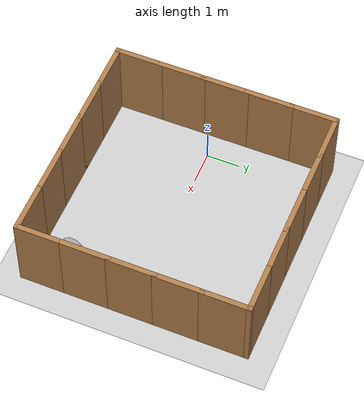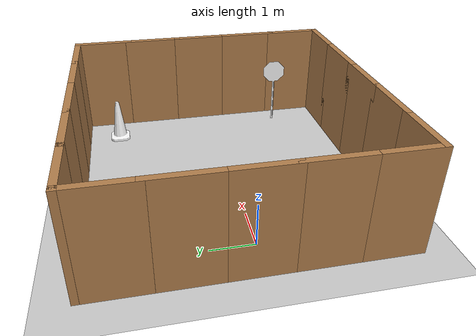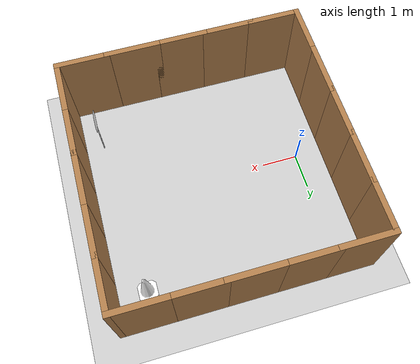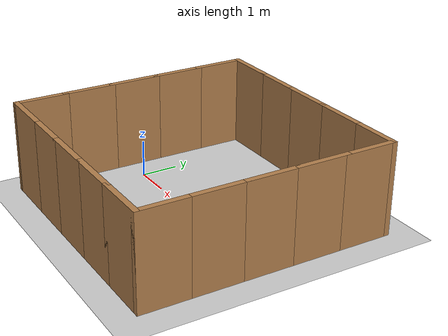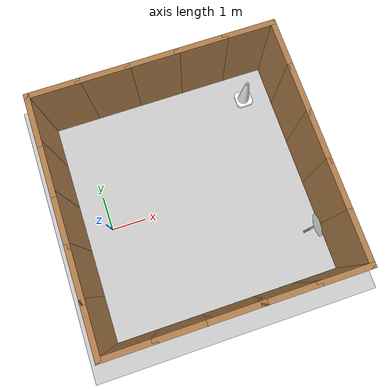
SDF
<sdf version="1.7">
 <world name="default">
  <plugin filename="gz-sim-physics-system" name="gz::sim::systems::Physics"/>
  <plugin filename="gz-sim-user-commands-system" name="gz::sim::systems::UserCommands"/>
  <plugin filename="gz-sim-scene-broadcaster-system" name="gz::sim::systems::SceneBroadcaster"/>
  <plugin filename="gz-sim-sensors-system" name="gz::sim::systems::Sensors">
   <render_engine>ogre2</render_engine>
  </plugin>
  <light name="sun" type="directional">
   <pose>0 0 10 0 -0 0</pose>
   <diffuse>0.8 0.8 0.8 1</diffuse>
   <specular>0.2 0.2 0.2 1</specular>
   <attenuation>
    <range>1000</range>
    <constant>0.9</constant>
    <linear>0.01</linear>
    <quadratic>0.001</quadratic>
   </attenuation>
   <direction>-0.5 0.1 -0.9</direction>
   <spot><inner_angle>0</inner_angle><outer_angle>0</outer_angle><falloff>0</falloff></spot>
  </light>
  <model name="ground_plane">
   <static>1</static>
   <link name="link">
    <collision name="collision">
     <geometry><plane><normal>0 0 1</normal><size>100 100</size></plane></geometry>
     <surface>
      <contact><collide_bitmask>65535</collide_bitmask></contact>
      <friction><ode><mu>100</mu><mu2>50</mu2></ode></friction>
     </surface>
    </collision>
    <visual name="visual">
     <cast_shadows>0</cast_shadows>
     <geometry><plane><normal>0 0 1</normal><size>100 100</size></plane></geometry>
     <material>
      <script><uri>file://media/materials/scripts/gazebo.material</uri><name>Gazebo/Grey</name></script>
     </material>
    </visual>
   </link>
  </model>
  <gravity>0 0 -9.8</gravity>
  <magnetic_field>6e-06 2.3e-05 -4.2e-05</magnetic_field>
  <atmosphere type="adiabatic"/>
  <physics type="ode">
   <max_step_size>0.001</max_step_size>
   <real_time_factor>1</real_time_factor>
   <real_time_update_rate>1000</real_time_update_rate>
  </physics>
  <scene><ambient>0.4 0.4 0.4 1</ambient><background>0.7 0.7 0.7 1</background><shadows>1</shadows></scene>
  <audio><device>default</device></audio>
  <spherical_coordinates>
   <surface_model>EARTH_WGS84</surface_model>
   <latitude_deg>0</latitude_deg>
   <longitude_deg>0</longitude_deg>
   <elevation>0</elevation>
   <heading_deg>0</heading_deg>
  </spherical_coordinates>
  <model name="Stop Sign">
   <static>1</static>
   <link name="link">
    <collision name="collision">
     <geometry><mesh><uri>model://stop_sign/meshes/stop_sign.dae</uri></mesh></geometry>
    </collision>
    <visual name="visual">
     <geometry><mesh><uri>model://stop_sign/meshes/stop_sign.dae</uri></mesh></geometry>
     <material>
      <ambient>1 1 1 1</ambient>
      <diffuse>1 1 1 1</diffuse>
      <specular>0.2 0.2 0.2 1</specular>
      <emissive>0.16 0.16 0.16 1</emissive>
      <pbr>
       <metal>
        <albedo_map>model://stop_sign/materials/textures/StopSign_Diffuse.png</albedo_map>
        <roughness>0.7</roughness>
        <metalness>0.0</metalness>
       </metal>
      </pbr>
     </material>
    </visual>
   </link>
   <pose>5.32863 -1.84028 0.007263 0 0 -1.63625</pose>
  </model>
  <model name="Construction Cone">
   <link name="link">
    <collision name="collision">
     <geometry>
      <mesh><scale>10 10 10</scale><uri>model://construction_cone/meshes/construction_cone.dae</uri></mesh>
     </geometry>
    </collision>
    <visual name="visual">
     <geometry>
      <mesh><scale>10 10 10</scale><uri>model://construction_cone/meshes/construction_cone.dae</uri></mesh>
     </geometry>
     <material>
      <ambient>1 1 1 1</ambient>
      <diffuse>1 1 1 1</diffuse>
      <specular>0.18 0.18 0.18 1</specular>
      <emissive>0.2 0.2 0.2 1</emissive>
      <pbr>
       <metal>
        <albedo_map>model://construction_cone/materials/textures/Construction_Cone_Diffuse.png</albedo_map>
        <roughness>0.8</roughness>
        <metalness>0.0</metalness>
       </metal>
      </pbr>
     </material>
    </visual>
    <inertial>
     <inertia><ixx>1</ixx><ixy>0</ixy><ixz>0</ixz><iyy>1</iyy><iyz>0</iyz><izz>1</izz></inertia>
     <mass>1</mass>
    </inertial>
   </link>
   <pose>5.0561 2.67386 -4e-06 1e-06 0 -9e-05</pose>
  </model>
  <model name="wood_wall2">
   <pose>2.545 0.185 0 0 -0 0</pose>
   <link name="Wall_11">
    <collision name="Wall_11_Collision">
     <geometry><box><size>1.5 0.15 2.5</size></box></geometry>
     <pose>0 0 1.25 0 -0 0</pose>
    </collision>
    <visual name="Wall_11_Visual">
     <pose>0 0 1.25 0 -0 0</pose>
     <geometry><box><size>1.5 0.15 2.5</size></box></geometry>
     <material>
      <script><uri>file://media/materials/scripts/gazebo.material</uri><name>Gazebo/Wood</name></script>
      <ambient>1 1 1 1</ambient>
     </material>
     <meta><layer>0</layer></meta>
    </visual>
    <pose>3.375 0 0 0 -0 1.5708</pose>
   </link>
   <link name="Wall_12">
    <collision name="Wall_12_Collision">
     <geometry><box><size>1.5 0.15 2.5</size></box></geometry>
     <pose>0 0 1.25 0 -0 0</pose>
    </collision>
    <visual name="Wall_12_Visual">
     <pose>0 0 1.25 0 -0 0</pose>
     <geometry><box><size>1.5 0.15 2.5</size></box></geometry>
     <material>
      <script><uri>file://media/materials/scripts/gazebo.material</uri><name>Gazebo/Wood</name></script>
      <ambient>1 1 1 1</ambient>
     </material>
     <meta><layer>0</layer></meta>
    </visual>
    <pose>3.375 1.35 0 0 -0 1.5708</pose>
   </link>
   <link name="Wall_15">
    <collision name="Wall_15_Collision">
     <geometry><box><size>1.5 0.15 2.5</size></box></geometry>
     <pose>0 0 1.25 0 -0 0</pose>
    </collision>
    <visual name="Wall_15_Visual">
     <pose>0 0 1.25 0 -0 0</pose>
     <geometry><box><size>1.5 0.15 2.5</size></box></geometry>
     <material>
      <script><uri>file://media/materials/scripts/gazebo.material</uri><name>Gazebo/Wood</name></script>
      <ambient>1 1 1 1</ambient>
     </material>
     <meta><layer>0</layer></meta>
    </visual>
    <pose>3.375 2.7 0 0 -0 1.5708</pose>
   </link>
   <link name="Wall_16">
    <collision name="Wall_16_Collision">
     <geometry><box><size>1.5 0.15 2.5</size></box></geometry>
     <pose>0 0 1.25 0 -0 0</pose>
    </collision>
    <visual name="Wall_16_Visual">
     <pose>0 0 1.25 0 -0 0</pose>
     <geometry><box><size>1.5 0.15 2.5</size></box></geometry>
     <material>
      <script><uri>file://media/materials/scripts/gazebo.material</uri><name>Gazebo/Wood</name></script>
      <ambient>1 1 1 1</ambient>
     </material>
     <meta><layer>0</layer></meta>
    </visual>
    <pose>2.7 3.375 0 0 -0 3.14159</pose>
   </link>
   <link name="Wall_17">
    <collision name="Wall_17_Collision">
     <geometry><box><size>1.5 0.15 2.5</size></box></geometry>
     <pose>0 0 1.25 0 -0 0</pose>
    </collision>
    <visual name="Wall_17_Visual">
     <pose>0 0 1.25 0 -0 0</pose>
     <geometry><box><size>1.5 0.15 2.5</size></box></geometry>
     <material>
      <script><uri>file://media/materials/scripts/gazebo.material</uri><name>Gazebo/Wood</name></script>
      <ambient>1 1 1 1</ambient>
     </material>
     <meta><layer>0</layer></meta>
    </visual>
    <pose>1.35 3.375 0 0 -0 3.14159</pose>
   </link>
   <link name="Wall_18">
    <collision name="Wall_18_Collision">
     <geometry><box><size>1.5 0.15 2.5</size></box></geometry>
     <pose>0 0 1.25 0 -0 0</pose>
    </collision>
    <visual name="Wall_18_Visual">
     <pose>0 0 1.25 0 -0 0</pose>
     <geometry><box><size>1.5 0.15 2.5</size></box></geometry>
     <material>
      <script><uri>file://media/materials/scripts/gazebo.material</uri><name>Gazebo/Wood</name></script>
      <ambient>1 1 1 1</ambient>
     </material>
     <meta><layer>0</layer></meta>
    </visual>
    <pose>-0 3.375 0 0 -0 3.14159</pose>
   </link>
   <link name="Wall_19">
    <collision name="Wall_19_Collision">
     <geometry><box><size>1.5 0.15 2.5</size></box></geometry>
     <pose>0 0 1.25 0 -0 0</pose>
    </collision>
    <visual name="Wall_19_Visual">
     <pose>0 0 1.25 0 -0 0</pose>
     <geometry><box><size>1.5 0.15 2.5</size></box></geometry>
     <material>
      <script><uri>file://media/materials/scripts/gazebo.material</uri><name>Gazebo/Wood</name></script>
      <ambient>1 1 1 1</ambient>
     </material>
     <meta><layer>0</layer></meta>
    </visual>
    <pose>-1.35 3.375 0 0 -0 3.14159</pose>
   </link>
   <link name="Wall_3">
    <collision name="Wall_3_Collision">
     <geometry><box><size>1.46077 0.15 2.5</size></box></geometry>
     <pose>0 0 1.25 0 -0 0</pose>
    </collision>
    <visual name="Wall_3_Visual">
     <pose>0 0 1.25 0 -0 0</pose>
     <geometry><box><size>1.46077 0.15 2.5</size></box></geometry>
     <material>
      <script><uri>file://media/materials/scripts/gazebo.material</uri><name>Gazebo/Wood</name></script>
      <ambient>1 1 1 1</ambient>
     </material>
     <meta><layer>0</layer></meta>
    </visual>
    <pose>-1.36961 -3.375 0 0 -0 0</pose>
   </link>
   <link name="Wall_30">
    <collision name="Wall_30_Collision">
     <geometry><box><size>1.5 0.15 2.5</size></box></geometry>
     <pose>0 0 1.25 0 -0 0</pose>
    </collision>
    <visual name="Wall_30_Visual">
     <pose>0 0 1.25 0 -0 0</pose>
     <geometry><box><size>1.5 0.15 2.5</size></box></geometry>
     <material>
      <script><uri>file://media/materials/scripts/gazebo.material</uri><name>Gazebo/Wood</name></script>
      <ambient>1 1 1 1</ambient>
     </material>
     <meta><layer>0</layer></meta>
    </visual>
    <pose>-2.7 3.375 0 0 -0 3.14159</pose>
   </link>
   <link name="Wall_31">
    <collision name="Wall_31_Collision">
     <geometry><box><size>1.5 0.15 2.5</size></box></geometry>
     <pose>0 0 1.25 0 -0 0</pose>
    </collision>
    <visual name="Wall_31_Visual">
     <pose>0 0 1.25 0 -0 0</pose>
     <geometry><box><size>1.5 0.15 2.5</size></box></geometry>
     <material>
      <script><uri>file://media/materials/scripts/gazebo.material</uri><name>Gazebo/Wood</name></script>
      <ambient>1 1 1 1</ambient>
     </material>
     <meta><layer>0</layer></meta>
    </visual>
    <pose>-3.375 2.7 0 0 -0 -1.5708</pose>
   </link>
   <link name="Wall_33">
    <collision name="Wall_33_Collision">
     <geometry><box><size>1.5 0.15 2.5</size></box></geometry>
     <pose>0 0 1.25 0 -0 0</pose>
    </collision>
    <visual name="Wall_33_Visual">
     <pose>0 0 1.25 0 -0 0</pose>
     <geometry><box><size>1.5 0.15 2.5</size></box></geometry>
     <material>
      <script><uri>file://media/materials/scripts/gazebo.material</uri><name>Gazebo/Wood</name></script>
      <ambient>1 1 1 1</ambient>
     </material>
     <meta><layer>0</layer></meta>
    </visual>
    <pose>-3.375 1.35 0 0 -0 -1.5708</pose>
   </link>
   <link name="Wall_34">
    <collision name="Wall_34_Collision">
     <geometry><box><size>1.5 0.15 2.5</size></box></geometry>
     <pose>0 0 1.25 0 -0 0</pose>
    </collision>
    <visual name="Wall_34_Visual">
     <pose>0 0 1.25 0 -0 0</pose>
     <geometry><box><size>1.5 0.15 2.5</size></box></geometry>
     <material>
      <script><uri>file://media/materials/scripts/gazebo.material</uri><name>Gazebo/Wood</name></script>
      <ambient>1 1 1 1</ambient>
     </material>
     <meta><layer>0</layer></meta>
    </visual>
    <pose>-3.375 0 0 0 -0 -1.5708</pose>
   </link>
   <link name="Wall_35">
    <collision name="Wall_35_Collision">
     <geometry><box><size>1.5 0.15 2.5</size></box></geometry>
     <pose>0 0 1.25 0 -0 0</pose>
    </collision>
    <visual name="Wall_35_Visual">
     <pose>0 0 1.25 0 -0 0</pose>
     <geometry><box><size>1.5 0.15 2.5</size></box></geometry>
     <material>
      <script><uri>file://media/materials/scripts/gazebo.material</uri><name>Gazebo/Wood</name></script>
      <ambient>1 1 1 1</ambient>
     </material>
     <meta><layer>0</layer></meta>
    </visual>
    <pose>-3.375 -1.35 0 0 -0 -1.5708</pose>
   </link>
   <link name="Wall_37">
    <collision name="Wall_37_Collision">
     <geometry><box><size>1.5 0.15 2.5</size></box></geometry>
     <pose>0 0 1.25 0 -0 0</pose>
    </collision>
    <visual name="Wall_37_Visual">
     <pose>0 0 1.25 0 -0 0</pose>
     <geometry><box><size>1.5 0.15 2.5</size></box></geometry>
     <material>
      <script><uri>file://media/materials/scripts/gazebo.material</uri><name>Gazebo/Wood</name></script>
      <ambient>1 1 1 1</ambient>
     </material>
     <meta><layer>0</layer></meta>
    </visual>
    <pose>-3.375 -2.7 0 0 -0 -1.5708</pose>
   </link>
   <link name="Wall_38">
    <collision name="Wall_38_Collision">
     <geometry><box><size>1.5 0.15 2.5</size></box></geometry>
     <pose>0 0 1.25 0 -0 0</pose>
    </collision>
    <visual name="Wall_38_Visual">
     <pose>0 0 1.25 0 -0 0</pose>
     <geometry><box><size>1.5 0.15 2.5</size></box></geometry>
     <material>
      <script><uri>file://media/materials/scripts/gazebo.material</uri><name>Gazebo/Wood</name></script>
      <ambient>1 1 1 1</ambient>
     </material>
     <meta><layer>0</layer></meta>
    </visual>
    <pose>-2.7 -3.375 0 0 -0 0</pose>
   </link>
   <link name="Wall_4">
    <collision name="Wall_4_Collision">
     <geometry><box><size>1.5 0.15 2.5</size></box></geometry>
     <pose>0 0 1.25 0 -0 0</pose>
    </collision>
    <visual name="Wall_4_Visual">
     <pose>0 0 1.25 0 -0 0</pose>
     <geometry><box><size>1.5 0.15 2.5</size></box></geometry>
     <material>
      <script><uri>file://media/materials/scripts/gazebo.material</uri><name>Gazebo/Wood</name></script>
      <ambient>1 1 1 1</ambient>
     </material>
     <meta><layer>0</layer></meta>
    </visual>
    <pose>-0.019614 -3.375 0 0 -0 0</pose>
   </link>
   <link name="Wall_5">
    <collision name="Wall_5_Collision">
     <geometry><box><size>1.53923 0.15 2.5</size></box></geometry>
     <pose>0 0 1.25 0 -0 0</pose>
    </collision>
    <visual name="Wall_5_Visual">
     <pose>0 0 1.25 0 -0 0</pose>
     <geometry><box><size>1.53923 0.15 2.5</size></box></geometry>
     <material>
      <script><uri>file://media/materials/scripts/gazebo.material</uri><name>Gazebo/Wood</name></script>
      <ambient>1 1 1 1</ambient>
     </material>
     <meta><layer>0</layer></meta>
    </visual>
    <pose>1.33039 -3.375 0 0 -0 0</pose>
   </link>
   <link name="Wall_7">
    <collision name="Wall_7_Collision">
     <geometry><box><size>1.5 0.15 2.5</size></box></geometry>
     <pose>0 0 1.25 0 -0 0</pose>
    </collision>
    <visual name="Wall_7_Visual">
     <pose>0 0 1.25 0 -0 0</pose>
     <geometry><box><size>1.5 0.15 2.5</size></box></geometry>
     <material>
      <script><uri>file://media/materials/scripts/gazebo.material</uri><name>Gazebo/Wood</name></script>
      <ambient>1 1 1 1</ambient>
     </material>
     <meta><layer>0</layer></meta>
    </visual>
    <pose>2.7 -3.375 0 0 -0 0</pose>
   </link>
   <link name="Wall_8">
    <collision name="Wall_8_Collision">
     <geometry><box><size>1.5 0.15 2.5</size></box></geometry>
     <pose>0 0 1.25 0 -0 0</pose>
    </collision>
    <visual name="Wall_8_Visual">
     <pose>0 0 1.25 0 -0 0</pose>
     <geometry><box><size>1.5 0.15 2.5</size></box></geometry>
     <material>
      <script><uri>file://media/materials/scripts/gazebo.material</uri><name>Gazebo/Wood</name></script>
      <ambient>1 1 1 1</ambient>
     </material>
     <meta><layer>0</layer></meta>
    </visual>
    <pose>3.375 -2.7 0 0 -0 1.5708</pose>
   </link>
   <link name="Wall_9">
    <collision name="Wall_9_Collision">
     <geometry><box><size>1.5 0.15 2.5</size></box></geometry>
     <pose>0 0 1.25 0 -0 0</pose>
    </collision>
    <visual name="Wall_9_Visual">
     <pose>0 0 1.25 0 -0 0</pose>
     <geometry><box><size>1.5 0.15 2.5</size></box></geometry>
     <material>
      <script><uri>file://media/materials/scripts/gazebo.material</uri><name>Gazebo/Wood</name></script>
      <ambient>1 1 1 1</ambient>
     </material>
     <meta><layer>0</layer></meta>
    </visual>
    <pose>3.375 -1.35 0 0 -0 1.5708</pose>
   </link>
   <static>1</static>
  </model>
 </world>
</sdf>
